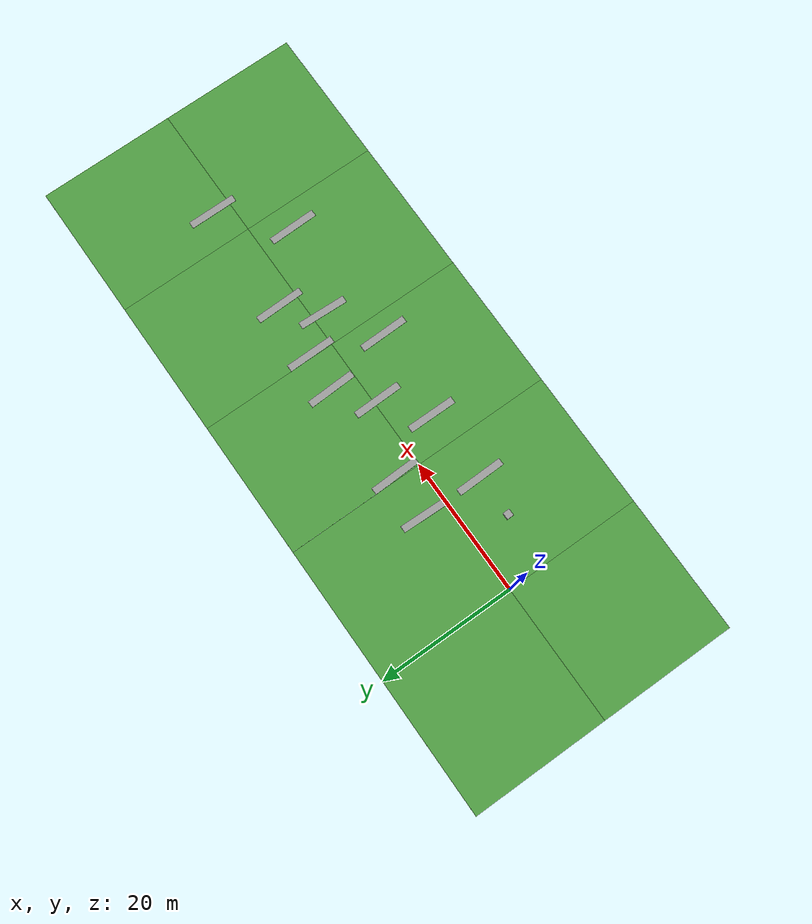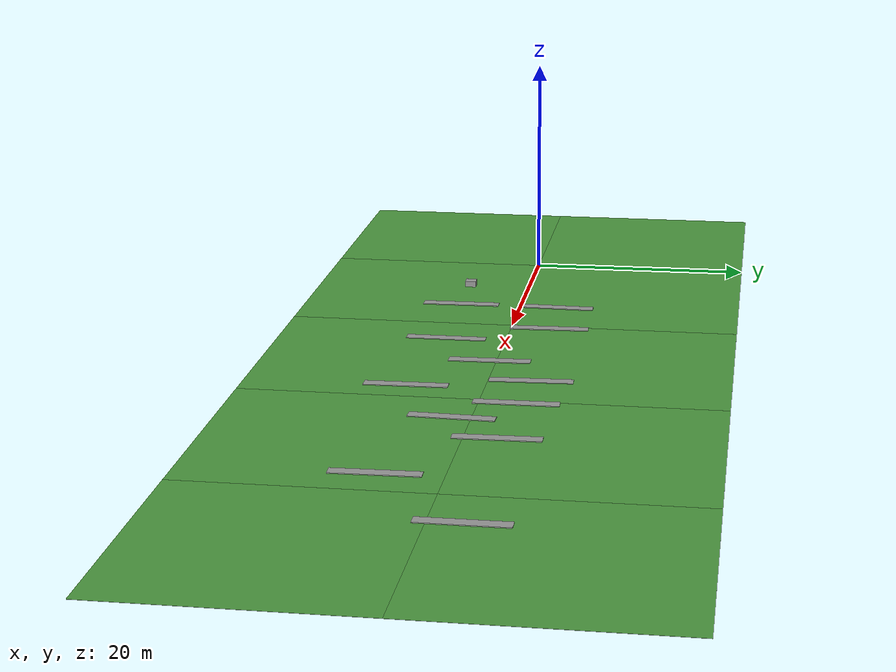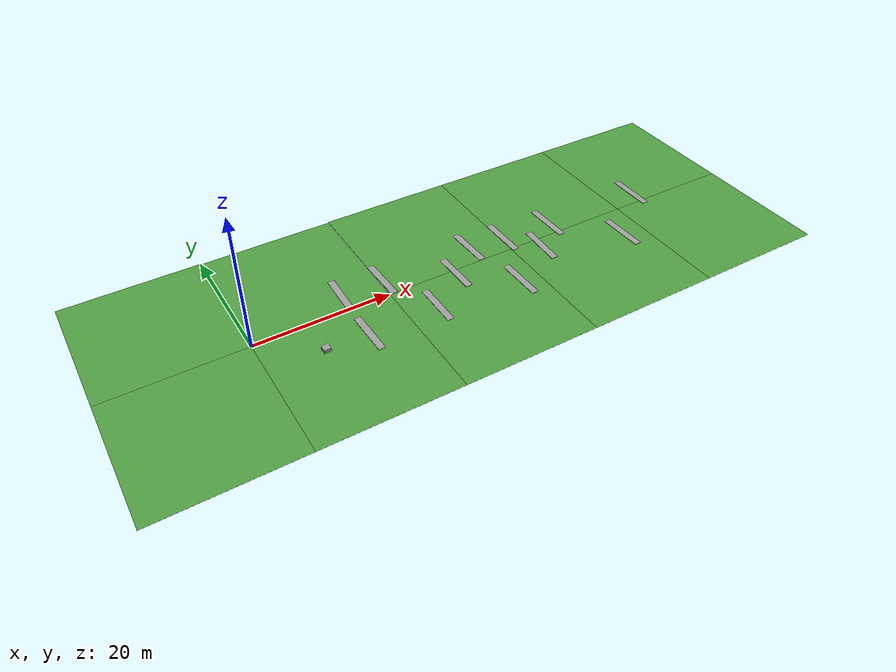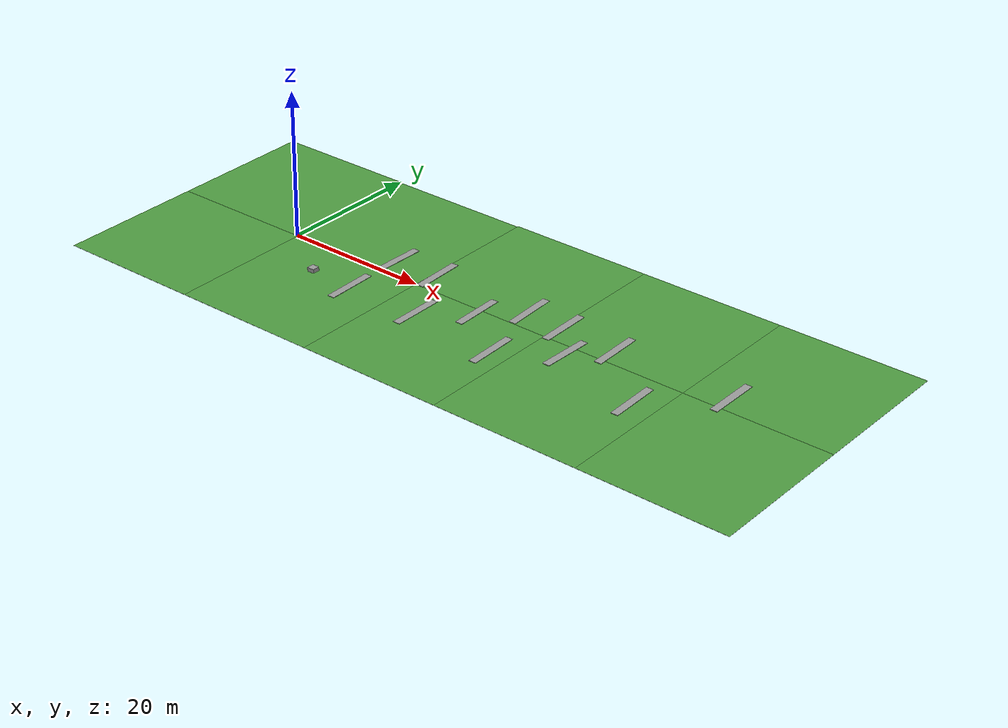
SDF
<sdf version="1.7">
 <world name="my_world">
  <model name="ground 1">
   <static>1</static>
   <link name="link">
    <collision name="collision">
     <geometry><plane><normal>0 0 1</normal><size>20 20</size></plane></geometry>
     <surface>
      <contact><collide_bitmask>65535</collide_bitmask></contact>
      <friction><ode><mu>50</mu><mu2>50</mu2></ode></friction>
     </surface>
    </collision>
    <visual name="visual">
     <cast_shadows>0</cast_shadows>
     <geometry><plane><normal>0 0 1</normal><size>20 20</size></plane></geometry>
     <material>
      <script>
       <uri>model://ground_grass_1/materials/scripts</uri>
       <uri>model://ground_grass_1/materials/textures</uri>
       <name>GrassGround</name>
      </script>
     </material>
    </visual>
   </link>
   <pose>10 10 0 0 -0 0</pose>
  </model>
  <model name="ground 2">
   <static>1</static>
   <link name="link">
    <collision name="collision">
     <geometry><plane><normal>0 0 1</normal><size>20 20</size></plane></geometry>
     <surface>
      <contact><collide_bitmask>65535</collide_bitmask></contact>
      <friction><ode><mu>100</mu><mu2>50</mu2></ode></friction>
     </surface>
    </collision>
    <visual name="visual">
     <cast_shadows>0</cast_shadows>
     <geometry><plane><normal>0 0 1</normal><size>20 20</size></plane></geometry>
     <material>
      <script>
       <uri>model://ground_grass_2/materials/scripts</uri>
       <uri>model://ground_grass_2/materials/textures</uri>
       <name>GrassGround</name>
      </script>
     </material>
    </visual>
   </link>
   <pose>10 -10 0 0 -0 0</pose>
  </model>
  <model name="ground 3">
   <static>1</static>
   <link name="link">
    <collision name="collision">
     <geometry><plane><normal>0 0 1</normal><size>20 20</size></plane></geometry>
     <surface>
      <contact><collide_bitmask>65535</collide_bitmask></contact>
      <friction><ode><mu>100</mu><mu2>50</mu2></ode></friction>
     </surface>
    </collision>
    <visual name="visual">
     <cast_shadows>0</cast_shadows>
     <geometry><plane><normal>0 0 1</normal><size>20 20</size></plane></geometry>
     <material>
      <script>
       <uri>model://ground_grass_2/materials/scripts</uri>
       <uri>model://ground_grass_2/materials/textures</uri>
       <name>GrassGround</name>
      </script>
     </material>
    </visual>
   </link>
   <pose>-10 10 0 0 -0 0</pose>
  </model>
  <model name="ground 4">
   <static>1</static>
   <link name="link">
    <collision name="collision">
     <geometry><plane><normal>0 0 1</normal><size>20 20</size></plane></geometry>
     <surface>
      <contact><collide_bitmask>65535</collide_bitmask></contact>
      <friction><ode><mu>50</mu><mu2>50</mu2></ode></friction>
     </surface>
    </collision>
    <visual name="visual">
     <cast_shadows>0</cast_shadows>
     <geometry><plane><normal>0 0 1</normal><size>20 20</size></plane></geometry>
     <material>
      <script>
       <uri>model://ground_grass_1/materials/scripts</uri>
       <uri>model://ground_grass_1/materials/textures</uri>
       <name>GrassGround</name>
      </script>
     </material>
    </visual>
   </link>
   <pose>-10 -10 0 0 -0 0</pose>
  </model>
  <model name="ground 5">
   <static>1</static>
   <link name="link">
    <collision name="collision">
     <geometry><plane><normal>0 0 1</normal><size>20 20</size></plane></geometry>
     <surface>
      <contact><collide_bitmask>65535</collide_bitmask></contact>
      <friction><ode><mu>40</mu><mu2>40</mu2></ode></friction>
     </surface>
    </collision>
    <visual name="visual">
     <cast_shadows>0</cast_shadows>
     <geometry><plane><normal>0 0 1</normal><size>20 20</size></plane></geometry>
     <material>
      <script>
       <uri>model://ground_grass_3/materials/scripts</uri>
       <uri>model://ground_grass_3/materials/textures</uri>
       <name>GrassGround</name>
      </script>
     </material>
    </visual>
   </link>
   <pose>30 10 0 0 -0 0</pose>
  </model>
  <model name="ground 6">
   <static>1</static>
   <link name="link">
    <collision name="collision">
     <geometry><plane><normal>0 0 1</normal><size>20 20</size></plane></geometry>
     <surface>
      <contact><collide_bitmask>65535</collide_bitmask></contact>
      <friction><ode><mu>100</mu><mu2>50</mu2></ode></friction>
     </surface>
    </collision>
    <visual name="visual">
     <cast_shadows>0</cast_shadows>
     <geometry><plane><normal>0 0 1</normal><size>20 20</size></plane></geometry>
     <material>
      <script>
       <uri>model://ground_grass_2/materials/scripts</uri>
       <uri>model://ground_grass_2/materials/textures</uri>
       <name>GrassGround</name>
      </script>
     </material>
    </visual>
   </link>
   <pose>30 -10 0 0 -0 0</pose>
  </model>
  <model name="ground 7">
   <static>1</static>
   <link name="link">
    <collision name="collision">
     <geometry><plane><normal>0 0 1</normal><size>20 20</size></plane></geometry>
     <surface>
      <contact><collide_bitmask>65535</collide_bitmask></contact>
      <friction><ode><mu>50</mu><mu2>50</mu2></ode></friction>
     </surface>
    </collision>
    <visual name="visual">
     <cast_shadows>0</cast_shadows>
     <geometry><plane><normal>0 0 1</normal><size>20 20</size></plane></geometry>
     <material>
      <script>
       <uri>model://ground_grass_1/materials/scripts</uri>
       <uri>model://ground_grass_1/materials/textures</uri>
       <name>GrassGround</name>
      </script>
     </material>
    </visual>
   </link>
   <pose>50 10 0 0 -0 0</pose>
  </model>
  <model name="ground 8">
   <static>1</static>
   <link name="link">
    <collision name="collision">
     <geometry><plane><normal>0 0 1</normal><size>20 20</size></plane></geometry>
     <surface>
      <contact><collide_bitmask>65535</collide_bitmask></contact>
      <friction><ode><mu>50</mu><mu2>50</mu2></ode></friction>
     </surface>
    </collision>
    <visual name="visual">
     <cast_shadows>0</cast_shadows>
     <geometry><plane><normal>0 0 1</normal><size>20 20</size></plane></geometry>
     <material>
      <script>
       <uri>model://ground_grass_1/materials/scripts</uri>
       <uri>model://ground_grass_1/materials/textures</uri>
       <name>GrassGround</name>
      </script>
     </material>
    </visual>
   </link>
   <pose>50 -10 0 0 -0 0</pose>
  </model>
  <model name="ground 9">
   <static>1</static>
   <link name="link">
    <collision name="collision">
     <geometry><plane><normal>0 0 1</normal><size>20 20</size></plane></geometry>
     <surface>
      <contact><collide_bitmask>65535</collide_bitmask></contact>
      <friction><ode><mu>100</mu><mu2>50</mu2></ode></friction>
     </surface>
    </collision>
    <visual name="visual">
     <cast_shadows>0</cast_shadows>
     <geometry><plane><normal>0 0 1</normal><size>20 20</size></plane></geometry>
     <material>
      <script>
       <uri>model://ground_grass_2/materials/scripts</uri>
       <uri>model://ground_grass_2/materials/textures</uri>
       <name>GrassGround</name>
      </script>
     </material>
    </visual>
   </link>
   <pose>70 10 0 0 -0 0</pose>
  </model>
  <model name="ground 10">
   <static>1</static>
   <link name="link">
    <collision name="collision">
     <geometry><plane><normal>0 0 1</normal><size>20 20</size></plane></geometry>
     <surface>
      <contact><collide_bitmask>65535</collide_bitmask></contact>
      <friction><ode><mu>100</mu><mu2>50</mu2></ode></friction>
     </surface>
    </collision>
    <visual name="visual">
     <cast_shadows>0</cast_shadows>
     <geometry><plane><normal>0 0 1</normal><size>20 20</size></plane></geometry>
     <material>
      <script>
       <uri>model://ground_grass_2/materials/scripts</uri>
       <uri>model://ground_grass_2/materials/textures</uri>
       <name>GrassGround</name>
      </script>
     </material>
    </visual>
   </link>
   <pose>70 -10 0 0 -0 0</pose>
  </model>
  <light name="sun" type="directional">
   <pose>0 0 10 0 -0 0</pose>
   <diffuse>0.8 0.8 0.8 1</diffuse>
   <specular>0.2 0.2 0.2 1</specular>
   <attenuation>
    <range>1000</range>
    <constant>0.9</constant>
    <linear>0.01</linear>
    <quadratic>0.001</quadratic>
   </attenuation>
   <direction>-0.5 0.1 -0.9</direction>
   <spot><inner_angle>0</inner_angle><outer_angle>0</outer_angle><falloff>0</falloff></spot>
  </light>
  <gravity>0 0 -9.8</gravity>
  <magnetic_field>6e-06 2.3e-05 -4.2e-05</magnetic_field>
  <atmosphere type="adiabatic"/>
  <physics type="ode">
   <max_step_size>0.001</max_step_size>
   <real_time_factor>1</real_time_factor>
   <real_time_update_rate>1000</real_time_update_rate>
  </physics>
  <scene><ambient>0.4 0.4 0.4 1</ambient><background>0.7 0.7 0.7 1</background><shadows>1</shadows></scene>
  <spherical_coordinates>
   <surface_model>EARTH_WGS84</surface_model>
   <latitude_deg>0</latitude_deg>
   <longitude_deg>0</longitude_deg>
   <elevation>0</elevation>
   <heading_deg>0</heading_deg>
  </spherical_coordinates>
  <model name="unit_box">
   <pose>7.95384 -5.5705 0.040798 0 1.5e-05 0.022588</pose>
   <link name="link">
    <inertial>
     <mass>1</mass>
     <inertia>
      <ixx>0.166667</ixx>
      <ixy>0</ixy>
      <ixz>0</ixz>
      <iyy>0.166667</iyy>
      <iyz>0</iyz>
      <izz>0.166667</izz>
     </inertia>
    </inertial>
    <collision name="collision"><geometry><box><size>1 1 1</size></box></geometry></collision>
    <visual name="visual">
     <geometry><box><size>1 1 1</size></box></geometry>
     <material>
      <script><name>Gazebo/Grey</name><uri>file://media/materials/scripts/gazebo.material</uri></script>
     </material>
    </visual>
   </link>
  </model>
  <model name="unit_box_clone">
   <pose>14.1421 3.22524 0.060374 0 0 -0.027371</pose>
   <link name="link">
    <inertial>
     <mass>1</mass>
     <inertia>
      <ixx>0.166667</ixx>
      <ixy>0</ixy>
      <ixz>0</ixz>
      <iyy>0.166667</iyy>
      <iyz>0</iyz>
      <izz>0.166667</izz>
     </inertia>
    </inertial>
    <collision name="collision"><geometry><box><size>1 6.99023 0.0686638</size></box></geometry></collision>
    <visual name="visual">
     <geometry><box><size>1 6.99023 0.0686638</size></box></geometry>
     <material>
      <script><name>Gazebo/Grey</name><uri>file://media/materials/scripts/gazebo.material</uri></script>
     </material>
    </visual>
   </link>
  </model>
  <model name="unit_box_clone_0">
   <pose>24.495 -5.25888 0.034327 0 1e-05 0</pose>
   <link name="link">
    <inertial>
     <mass>1</mass>
     <inertia>
      <ixx>0.166667</ixx>
      <ixy>0</ixy>
      <ixz>0</ixz>
      <iyy>0.166667</iyy>
      <iyz>0</iyz>
      <izz>0.166667</izz>
     </inertia>
    </inertial>
    <collision name="collision"><geometry><box><size>1 6.99023 0.068663</size></box></geometry></collision>
    <visual name="visual">
     <geometry><box><size>1 6.99023 0.068663</size></box></geometry>
     <material>
      <script><name>Gazebo/Grey</name><uri>file://media/materials/scripts/gazebo.material</uri></script>
     </material>
    </visual>
   </link>
  </model>
  <model name="unit_box_clone_1">
   <pose>34.9545 3.55346 0.034327 0 -1e-05 0.040158</pose>
   <link name="link">
    <inertial>
     <mass>1</mass>
     <inertia>
      <ixx>0.166667</ixx>
      <ixy>0</ixy>
      <ixz>0</ixz>
      <iyy>0.166667</iyy>
      <iyz>0</iyz>
      <izz>0.166667</izz>
     </inertia>
    </inertial>
    <collision name="collision"><geometry><box><size>1 6.99023 0.068663</size></box></geometry></collision>
    <visual name="visual">
     <geometry><box><size>1 6.99023 0.068663</size></box></geometry>
     <material>
      <script><name>Gazebo/Grey</name><uri>file://media/materials/scripts/gazebo.material</uri></script>
     </material>
    </visual>
   </link>
  </model>
  <model name="unit_box_clone_2">
   <pose>14.0614 -5.55231 0.040797 0 1.5e-05 0.019917</pose>
   <link name="link">
    <inertial>
     <mass>1</mass>
     <inertia>
      <ixx>0.166667</ixx>
      <ixy>0</ixy>
      <ixz>0</ixz>
      <iyy>0.166667</iyy>
      <iyz>0</iyz>
      <izz>0.166667</izz>
     </inertia>
    </inertial>
    <collision name="collision"><geometry><box><size>1 6.99023 0.08161</size></box></geometry></collision>
    <visual name="visual">
     <geometry><box><size>1 6.99023 0.08161</size></box></geometry>
     <material>
      <script><name>Gazebo/Grey</name><uri>file://media/materials/scripts/gazebo.material</uri></script>
     </material>
    </visual>
   </link>
  </model>
  <model name="unit_box_clone_3">
   <pose>20.5745 3.39827 0.0408 0 1e-05 0.030875</pose>
   <link name="link">
    <inertial>
     <mass>1</mass>
     <inertia>
      <ixx>0.166667</ixx>
      <ixy>0</ixy>
      <ixz>0</ixz>
      <iyy>0.166667</iyy>
      <iyz>0</iyz>
      <izz>0.166667</izz>
     </inertia>
    </inertial>
    <collision name="collision"><geometry><box><size>1 6.99023 0.08161</size></box></geometry></collision>
    <visual name="visual">
     <geometry><box><size>1 6.99023 0.08161</size></box></geometry>
     <material>
      <script><name>Gazebo/Grey</name><uri>file://media/materials/scripts/gazebo.material</uri></script>
     </material>
    </visual>
   </link>
  </model>
  <model name="unit_box_clone_4">
   <pose>30.2066 -0.582372 0.0408 0 -1e-05 0.021153</pose>
   <link name="link">
    <inertial>
     <mass>1</mass>
     <inertia>
      <ixx>0.166667</ixx>
      <ixy>0</ixy>
      <ixz>0</ixz>
      <iyy>0.166667</iyy>
      <iyz>0</iyz>
      <izz>0.166667</izz>
     </inertia>
    </inertial>
    <collision name="collision"><geometry><box><size>1 6.99023 0.08161</size></box></geometry></collision>
    <visual name="visual">
     <geometry><box><size>1 6.99023 0.08161</size></box></geometry>
     <material>
      <script><name>Gazebo/Grey</name><uri>file://media/materials/scripts/gazebo.material</uri></script>
     </material>
    </visual>
   </link>
  </model>
  <model name="unit_box_clone_5">
   <pose>40.5183 3.04066 0.0408 -0 1e-05 0.010551</pose>
   <link name="link">
    <inertial>
     <mass>1</mass>
     <inertia>
      <ixx>0.166667</ixx>
      <ixy>0</ixy>
      <ixz>0</ixz>
      <iyy>0.166667</iyy>
      <iyz>0</iyz>
      <izz>0.166667</izz>
     </inertia>
    </inertial>
    <collision name="collision"><geometry><box><size>1 6.99023 0.08161</size></box></geometry></collision>
    <visual name="visual">
     <geometry><box><size>1 6.99023 0.08161</size></box></geometry>
     <material>
      <script><name>Gazebo/Grey</name><uri>file://media/materials/scripts/gazebo.material</uri></script>
     </material>
    </visual>
   </link>
  </model>
  <model name="unit_box_clone_6">
   <pose>37.2252 -6.4942 0.0408 0 1e-05 0.021153</pose>
   <link name="link">
    <inertial>
     <mass>1</mass>
     <inertia>
      <ixx>0.166667</ixx>
      <ixy>0</ixy>
      <ixz>0</ixz>
      <iyy>0.166667</iyy>
      <iyz>0</iyz>
      <izz>0.166667</izz>
     </inertia>
    </inertial>
    <collision name="collision"><geometry><box><size>1 6.99023 0.08161</size></box></geometry></collision>
    <visual name="visual">
     <geometry><box><size>1 6.99023 0.08161</size></box></geometry>
     <material>
      <script><name>Gazebo/Grey</name><uri>file://media/materials/scripts/gazebo.material</uri></script>
     </material>
    </visual>
   </link>
  </model>
  <model name="unit_box_clone_7">
   <pose>44.354 -1.54117 0.040805 0 -0 -0.038417</pose>
   <link name="link">
    <inertial>
     <mass>1</mass>
     <inertia>
      <ixx>0.166667</ixx>
      <ixy>0</ixy>
      <ixz>0</ixz>
      <iyy>0.166667</iyy>
      <iyz>0</iyz>
      <izz>0.166667</izz>
     </inertia>
    </inertial>
    <collision name="collision"><geometry><box><size>1 6.99023 0.08161</size></box></geometry></collision>
    <visual name="visual">
     <geometry><box><size>1 6.99023 0.08161</size></box></geometry>
     <material>
      <script><name>Gazebo/Grey</name><uri>file://media/materials/scripts/gazebo.material</uri></script>
     </material>
    </visual>
   </link>
  </model>
  <model name="unit_box_clone_8">
   <pose>48.508 2.62109 0.0408 0 -1e-05 0.021152</pose>
   <link name="link">
    <inertial>
     <mass>1</mass>
     <inertia>
      <ixx>0.166667</ixx>
      <ixy>0</ixy>
      <ixz>0</ixz>
      <iyy>0.166667</iyy>
      <iyz>0</iyz>
      <izz>0.166667</izz>
     </inertia>
    </inertial>
    <collision name="collision"><geometry><box><size>1 6.99023 0.08161</size></box></geometry></collision>
    <visual name="visual">
     <geometry><box><size>1 6.99023 0.08161</size></box></geometry>
     <material>
      <script><name>Gazebo/Grey</name><uri>file://media/materials/scripts/gazebo.material</uri></script>
     </material>
    </visual>
   </link>
  </model>
  <model name="unit_box_clone_9">
   <pose>56.6978 -5.15043 0.0408 0 1e-05 0.021152</pose>
   <link name="link">
    <inertial>
     <mass>1</mass>
     <inertia>
      <ixx>0.166667</ixx>
      <ixy>0</ixy>
      <ixz>0</ixz>
      <iyy>0.166667</iyy>
      <iyz>0</iyz>
      <izz>0.166667</izz>
     </inertia>
    </inertial>
    <collision name="collision"><geometry><box><size>1 6.99023 0.08161</size></box></geometry></collision>
    <visual name="visual">
     <geometry><box><size>1 6.99023 0.08161</size></box></geometry>
     <material>
      <script><name>Gazebo/Grey</name><uri>file://media/materials/scripts/gazebo.material</uri></script>
     </material>
    </visual>
   </link>
  </model>
  <model name="unit_box_clone_10">
   <pose>64.8612 2.55335 0.040797 0 -1.5e-05 -0.001423</pose>
   <link name="link">
    <inertial>
     <mass>1</mass>
     <inertia>
      <ixx>0.166667</ixx>
      <ixy>0</ixy>
      <ixz>0</ixz>
      <iyy>0.166667</iyy>
      <iyz>0</iyz>
      <izz>0.166667</izz>
     </inertia>
    </inertial>
    <collision name="collision"><geometry><box><size>1 6.99023 0.08161</size></box></geometry></collision>
    <visual name="visual">
     <geometry><box><size>1 6.99023 0.08161</size></box></geometry>
     <material>
      <script><name>Gazebo/Grey</name><uri>file://media/materials/scripts/gazebo.material</uri></script>
     </material>
    </visual>
   </link>
  </model>
 </world>
</sdf>
